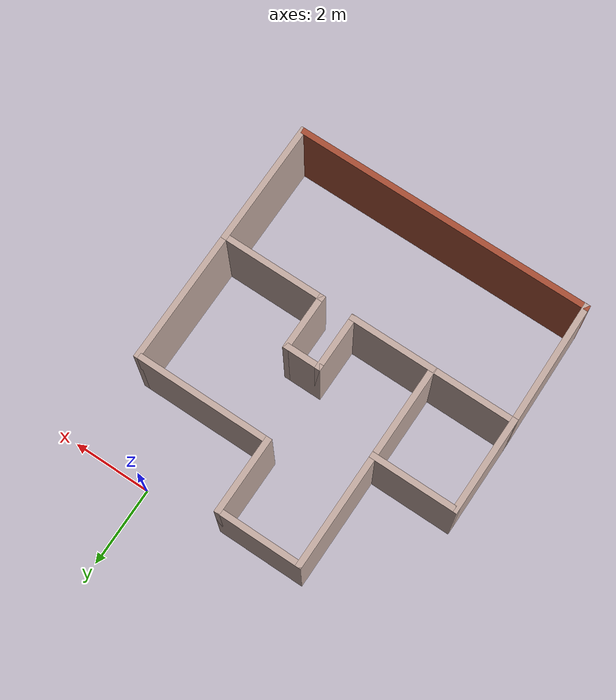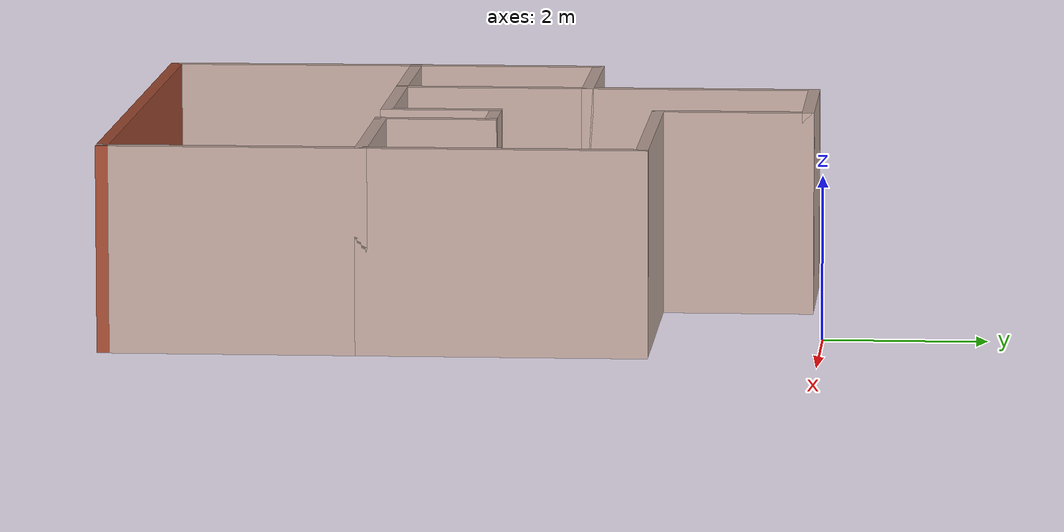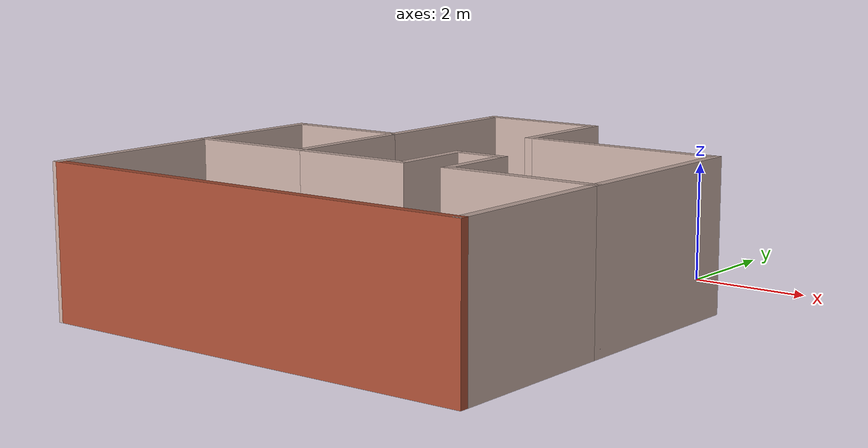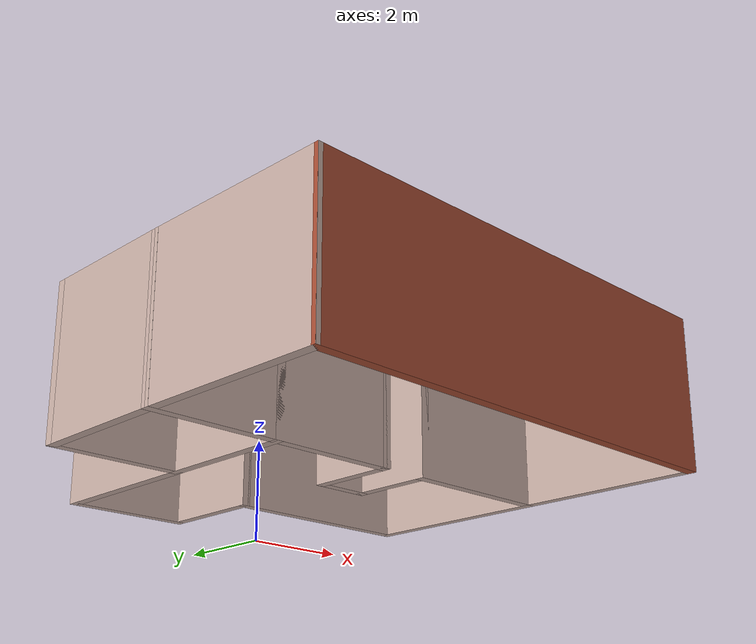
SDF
<?xml version='1.0'?>
<sdf version='1.6'>
  <model name='robot_w'>
    <pose frame=''>-2.38035 -4.40386 0 0 -0 0</pose>
    <link name='Wall_1'>
      <collision name='Wall_1_Collision'>
        <geometry>
          <box>
            <size>3 0.15 2.5</size>
          </box>
        </geometry>
        <pose frame=''>0 0 1.25 0 -0 0</pose>
      </collision>
      <visual name='Wall_1_Visual'>
        <pose frame=''>0 0 1.25 0 -0 0</pose>
        <geometry>
          <box>
            <size>3 0.15 2.5</size>
          </box>
        </geometry>
        <material>
          <script>
            <uri>file://media/materials/scripts/gazebo.material</uri>
            <name>Gazebo/Grey</name>
          </script>
          <ambient>0.760784 0.662745 0.627451 1</ambient>
        </material>
        <meta>
          <layer>0</layer>
        </meta>
      </visual>
      <pose frame=''>-1.7244 2.7256 0 0 -0 1.5708</pose>
    </link>
    <link name='Wall_10'>
      <collision name='Wall_10_Collision'>
        <geometry>
          <box>
            <size>2.5 0.15 2.5</size>
          </box>
        </geometry>
        <pose frame=''>0 0 1.25 0 -0 0</pose>
      </collision>
      <visual name='Wall_10_Visual'>
        <pose frame=''>0 0 1.25 0 -0 0</pose>
        <geometry>
          <box>
            <size>2.5 0.15 2.5</size>
          </box>
        </geometry>
        <material>
          <script>
            <uri>file://media/materials/scripts/gazebo.material</uri>
            <name>Gazebo/Grey</name>
          </script>
          <ambient>0.760784 0.662745 0.627451 1</ambient>
        </material>
        <meta>
          <layer>0</layer>
        </meta>
      </visual>
      <pose frame=''>-1.7244 0.1256 0 0 -0 1.5708</pose>
    </link>
    <link name='Wall_12'>
      <collision name='Wall_12_Collision'>
        <geometry>
          <box>
            <size>2.25 0.15 2.5</size>
          </box>
        </geometry>
        <pose frame=''>0 0 1.25 0 -0 0</pose>
      </collision>
      <visual name='Wall_12_Visual'>
        <pose frame=''>0 0 1.25 0 -0 0</pose>
        <geometry>
          <box>
            <size>2.25 0.15 2.5</size>
          </box>
        </geometry>
        <material>
          <script>
            <uri>file://media/materials/scripts/gazebo.material</uri>
            <name>Gazebo/Grey</name>
          </script>
          <ambient>0.760784 0.662745 0.627451 1</ambient>
        </material>
        <meta>
          <layer>0</layer>
        </meta>
      </visual>
      <pose frame=''>-0.6744 -1.0494 0 0 -0 0</pose>
    </link>
    <link name='Wall_13'>
      <collision name='Wall_13_Collision'>
        <geometry>
          <box>
            <size>1.5 0.15 2.5</size>
          </box>
        </geometry>
        <pose frame=''>0 0 1.25 0 -0 0</pose>
      </collision>
      <visual name='Wall_13_Visual'>
        <pose frame=''>0 0 1.25 0 -0 0</pose>
        <geometry>
          <box>
            <size>1.5 0.15 2.5</size>
          </box>
        </geometry>
        <material>
          <script>
            <uri>file://media/materials/scripts/gazebo.material</uri>
            <name>Gazebo/Grey</name>
          </script>
          <ambient>0.760784 0.662745 0.627451 1</ambient>
        </material>
        <meta>
          <layer>0</layer>
        </meta>
      </visual>
      <pose frame=''>0.3756 -0.3744 0 0 -0 1.5708</pose>
    </link>
    <link name='Wall_14'>
      <collision name='Wall_14_Collision'>
        <geometry>
          <box>
            <size>1 0.15 2.5</size>
          </box>
        </geometry>
        <pose frame=''>0 0 1.25 0 -0 0</pose>
      </collision>
      <visual name='Wall_14_Visual'>
        <pose frame=''>0 0 1.25 0 -0 0</pose>
        <geometry>
          <box>
            <size>1 0.15 2.5</size>
          </box>
        </geometry>
        <material>
          <script>
            <uri>file://media/materials/scripts/gazebo.material</uri>
            <name>Gazebo/Grey</name>
          </script>
          <ambient>0.760784 0.662745 0.627451 1</ambient>
        </material>
        <meta>
          <layer>0</layer>
        </meta>
      </visual>
      <pose frame=''>0.8006 0.3006 0 0 -0 0</pose>
    </link>
    <link name='Wall_15'>
      <collision name='Wall_15_Collision'>
        <geometry>
          <box>
            <size>1.5 0.15 2.5</size>
          </box>
        </geometry>
        <pose frame=''>0 0 1.25 0 -0 0</pose>
      </collision>
      <visual name='Wall_15_Visual'>
        <pose frame=''>0 0 1.25 0 -0 0</pose>
        <geometry>
          <box>
            <size>1.5 0.15 2.5</size>
          </box>
        </geometry>
        <material>
          <script>
            <uri>file://media/materials/scripts/gazebo.material</uri>
            <name>Gazebo/Grey</name>
          </script>
          <ambient>0.760784 0.662745 0.627451 1</ambient>
        </material>
        <meta>
          <layer>0</layer>
        </meta>
      </visual>
      <pose frame=''>1.2256 -0.3744 0 0 -0 -1.5708</pose>
    </link>
    <link name='Wall_16'>
      <collision name='Wall_16_Collision'>
        <geometry>
          <box>
            <size>2.75 0.15 2.5</size>
          </box>
        </geometry>
        <pose frame=''>0 0 1.25 0 -0 0</pose>
      </collision>
      <visual name='Wall_16_Visual'>
        <pose frame=''>0 0 1.25 0 -0 0</pose>
        <geometry>
          <box>
            <size>2.75 0.15 2.5</size>
          </box>
        </geometry>
        <material>
          <script>
            <uri>file://media/materials/scripts/gazebo.material</uri>
            <name>Gazebo/Grey</name>
          </script>
          <ambient>0.760784 0.662745 0.627451 1</ambient>
        </material>
        <meta>
          <layer>0</layer>
        </meta>
      </visual>
      <pose frame=''>2.5256 -1.0494 0 0 -0 0</pose>
    </link>
    <link name='Wall_17'>
      <collision name='Wall_17_Collision'>
        <geometry>
          <box>
            <size>3.5 0.15 2.5</size>
          </box>
        </geometry>
        <pose frame=''>0 0 1.25 0 -0 0</pose>
      </collision>
      <visual name='Wall_17_Visual'>
        <pose frame=''>0 0 1.25 0 -0 0</pose>
        <geometry>
          <box>
            <size>3.5 0.15 2.5</size>
          </box>
        </geometry>
        <material>
          <script>
            <uri>file://media/materials/scripts/gazebo.material</uri>
            <name>Gazebo/Grey</name>
          </script>
          <ambient>0.760784 0.662745 0.627451 1</ambient>
        </material>
        <meta>
          <layer>0</layer>
        </meta>
      </visual>
      <pose frame=''>3.8256 0.6256 0 0 -0 1.5708</pose>
    </link>
    <link name='Wall_2'>
      <collision name='Wall_2_Collision'>
        <geometry>
          <box>
            <size>2.25 0.15 2.5</size>
          </box>
        </geometry>
        <pose frame=''>0 0 1.25 0 -0 0</pose>
      </collision>
      <visual name='Wall_2_Visual'>
        <pose frame=''>0 0 1.25 0 -0 0</pose>
        <geometry>
          <box>
            <size>2.25 0.15 2.5</size>
          </box>
        </geometry>
        <material>
          <script>
            <uri>file://media/materials/scripts/gazebo.material</uri>
            <name>Gazebo/Grey</name>
          </script>
          <ambient>0.760784 0.662745 0.627451 1</ambient>
        </material>
        <meta>
          <layer>0</layer>
        </meta>
      </visual>
      <pose frame=''>-0.6744 4.1506 0 0 -0 0</pose>
    </link>
    <link name='Wall_20'>
      <collision name='Wall_20_Collision'>
        <geometry>
          <box>
            <size>3.25 0.15 2.5</size>
          </box>
        </geometry>
        <pose frame=''>0 0 1.25 0 -0 0</pose>
      </collision>
      <visual name='Wall_20_Visual'>
        <pose frame=''>0 0 1.25 0 -0 0</pose>
        <geometry>
          <box>
            <size>3.25 0.15 2.5</size>
          </box>
        </geometry>
        <material>
          <script>
            <uri>file://media/materials/scripts/gazebo.material</uri>
            <name>Gazebo/Grey</name>
          </script>
          <ambient>0.760784 0.662745 0.627451 1</ambient>
        </material>
        <meta>
          <layer>0</layer>
        </meta>
      </visual>
      <pose frame=''>3.8256 -2.5994 0 0 -0 -1.5708</pose>
    </link>
    <link name='Wall_21'>
      <collision name='Wall_21_Collision'>
        <geometry>
          <box>
            <size>7.75 0.15 2.5</size>
          </box>
        </geometry>
        <pose frame=''>0 0 1.25 0 -0 0</pose>
      </collision>
      <visual name='Wall_21_Visual'>
        <pose frame=''>0 0 1.25 0 -0 0</pose>
        <geometry>
          <box>
            <size>7.75 0.15 2.5</size>
          </box>
        </geometry>
        <material>
          <script>
            <uri>file://media/materials/scripts/gazebo.material</uri>
            <name>Gazebo/Bricks</name>
          </script>
          <ambient>0.760784 0.662745 0.627451 1</ambient>
        </material>
        <meta>
          <layer>0</layer>
        </meta>
      </visual>
      <pose frame=''>0.0256 -4.1494 0 0 -0 3.14159</pose>
    </link>
    <link name='Wall_22'>
      <collision name='Wall_22_Collision'>
        <geometry>
          <box>
            <size>3.2504 0.15 2.5</size>
          </box>
        </geometry>
        <pose frame=''>0 0 1.25 0 -0 0</pose>
      </collision>
      <visual name='Wall_22_Visual'>
        <pose frame=''>0 0 1.25 0 -0 0</pose>
        <geometry>
          <box>
            <size>3.2504 0.15 2.5</size>
          </box>
        </geometry>
        <material>
          <script>
            <uri>file://media/materials/scripts/gazebo.material</uri>
            <name>Gazebo/Grey</name>
          </script>
          <ambient>0.760784 0.662745 0.627451 1</ambient>
        </material>
        <meta>
          <layer>0</layer>
        </meta>
      </visual>
      <pose frame=''>-3.7994 -2.5994 0 0 -0 1.58692</pose>
    </link>
    <link name='Wall_3'>
      <collision name='Wall_3_Collision'>
        <geometry>
          <box>
            <size>2 0.15 2.5</size>
          </box>
        </geometry>
        <pose frame=''>0 0 1.25 0 -0 0</pose>
      </collision>
      <visual name='Wall_3_Visual'>
        <pose frame=''>0 0 1.25 0 -0 0</pose>
        <geometry>
          <box>
            <size>2 0.15 2.5</size>
          </box>
        </geometry>
        <material>
          <script>
            <uri>file://media/materials/scripts/gazebo.material</uri>
            <name>Gazebo/Grey</name>
          </script>
          <ambient>0.760784 0.662745 0.627451 1</ambient>
        </material>
        <meta>
          <layer>0</layer>
        </meta>
      </visual>
      <pose frame=''>0.3756 3.2256 0 0 -0 -1.5708</pose>
    </link>
    <link name='Wall_4'>
      <collision name='Wall_4_Collision'>
        <geometry>
          <box>
            <size>3.5 0.15 2.5</size>
          </box>
        </geometry>
        <pose frame=''>0 0 1.25 0 -0 0</pose>
      </collision>
      <visual name='Wall_4_Visual'>
        <pose frame=''>0 0 1.25 0 -0 0</pose>
        <geometry>
          <box>
            <size>3.5 0.15 2.5</size>
          </box>
        </geometry>
        <material>
          <script>
            <uri>file://media/materials/scripts/gazebo.material</uri>
            <name>Gazebo/Grey</name>
          </script>
          <ambient>0.760784 0.662745 0.627451 1</ambient>
        </material>
        <meta>
          <layer>0</layer>
        </meta>
      </visual>
      <pose frame=''>2.0506 2.3006 0 0 -0 0</pose>
    </link>
    <link name='Wall_6'>
      <collision name='Wall_6_Collision'>
        <geometry>
          <box>
            <size>2.25 0.15 2.5</size>
          </box>
        </geometry>
        <pose frame=''>0 0 1.25 0 -0 0</pose>
      </collision>
      <visual name='Wall_6_Visual'>
        <pose frame=''>0 0 1.25 0 -0 0</pose>
        <geometry>
          <box>
            <size>2.25 0.15 2.5</size>
          </box>
        </geometry>
        <material>
          <script>
            <uri>file://media/materials/scripts/gazebo.material</uri>
            <name>Gazebo/Grey</name>
          </script>
          <ambient>0.760784 0.662745 0.627451 1</ambient>
        </material>
        <meta>
          <layer>0</layer>
        </meta>
      </visual>
      <pose frame=''>-2.7744 1.3006 0 0 -0 3.14159</pose>
    </link>
    <link name='Wall_7'>
      <collision name='Wall_7_Collision'>
        <geometry>
          <box>
            <size>2.5 0.15 2.5</size>
          </box>
        </geometry>
        <pose frame=''>0 0 1.25 0 -0 0</pose>
      </collision>
      <visual name='Wall_7_Visual'>
        <pose frame=''>0 0 1.25 0 -0 0</pose>
        <geometry>
          <box>
            <size>2.5 0.15 2.5</size>
          </box>
        </geometry>
        <material>
          <script>
            <uri>file://media/materials/scripts/gazebo.material</uri>
            <name>Gazebo/Grey</name>
          </script>
          <ambient>0.760784 0.662745 0.627451 1</ambient>
        </material>
        <meta>
          <layer>0</layer>
        </meta>
      </visual>
      <pose frame=''>-3.8244 0.1256 0 0 -0 -1.5708</pose>
    </link>
    <link name='Wall_9'>
      <collision name='Wall_9_Collision'>
        <geometry>
          <box>
            <size>2.25 0.15 2.5</size>
          </box>
        </geometry>
        <pose frame=''>0 0 1.25 0 -0 0</pose>
      </collision>
      <visual name='Wall_9_Visual'>
        <pose frame=''>0 0 1.25 0 -0 0</pose>
        <geometry>
          <box>
            <size>2.25 0.15 2.5</size>
          </box>
        </geometry>
        <material>
          <script>
            <uri>file://media/materials/scripts/gazebo.material</uri>
            <name>Gazebo/Grey</name>
          </script>
          <ambient>0.760784 0.662745 0.627451 1</ambient>
        </material>
        <meta>
          <layer>0</layer>
        </meta>
      </visual>
      <pose frame=''>-2.7744 -1.0494 0 0 -0 0</pose>
    </link>
    <static>1</static>
  </model>
</sdf>
